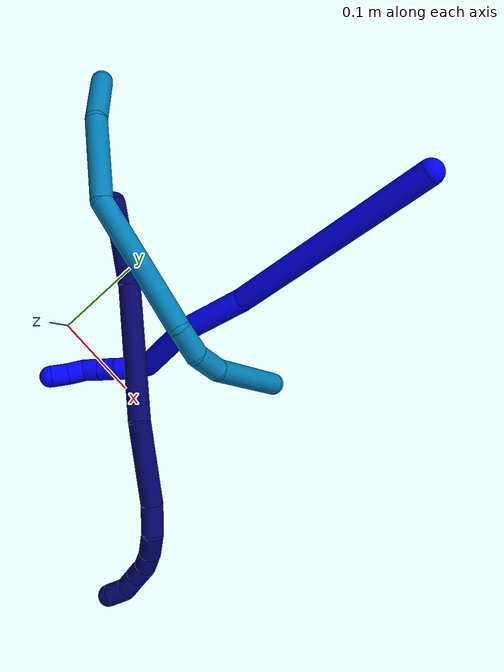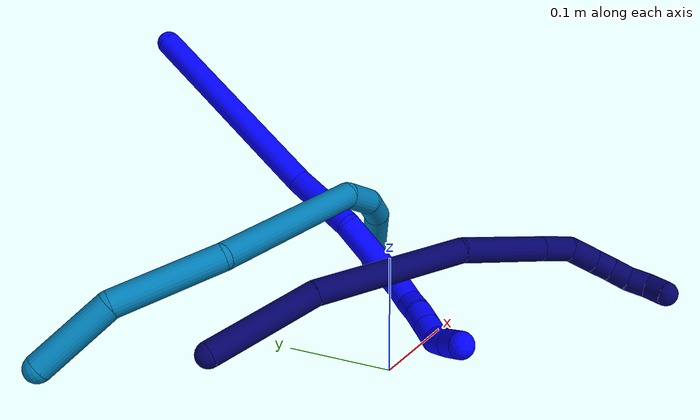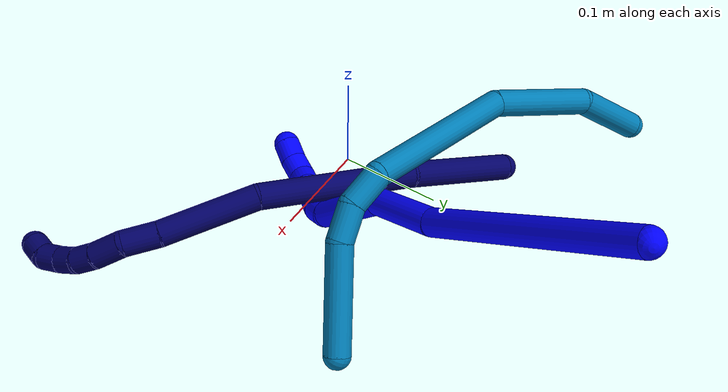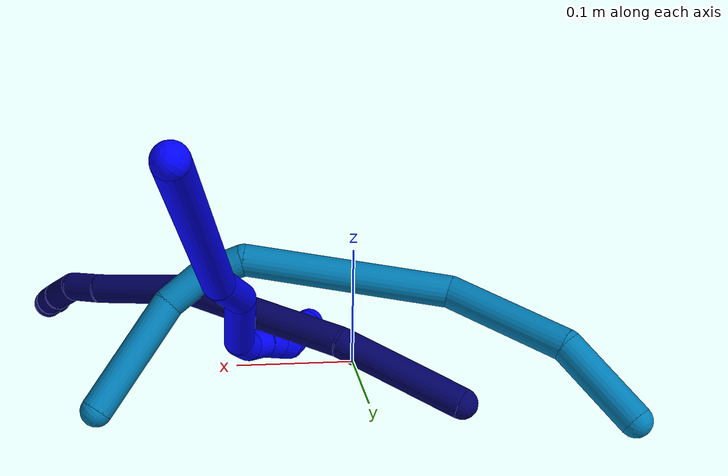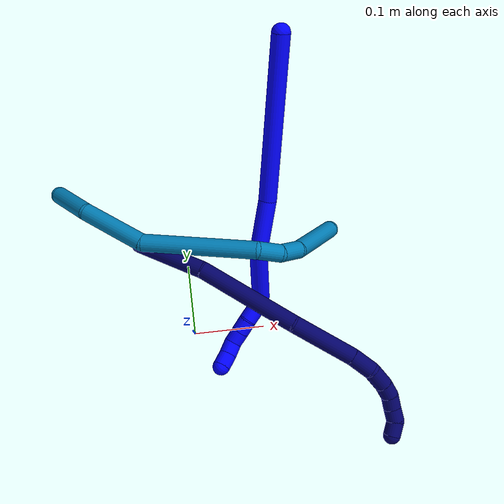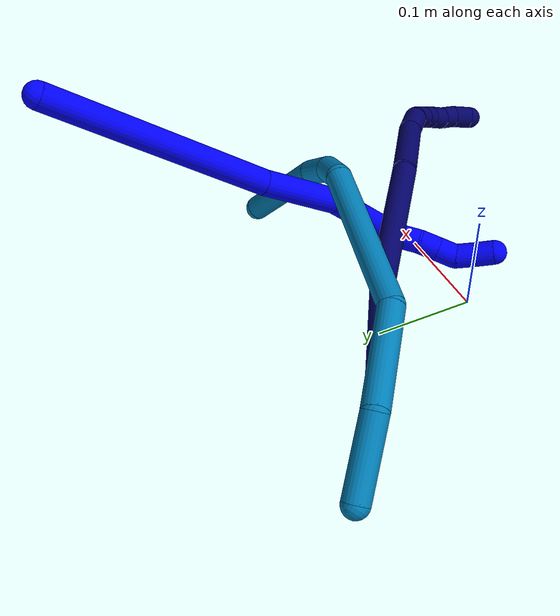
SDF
<sdf version="1.7">
 <world name="default">
  <model name="1">
   <static>0</static>
   <link name="1">
    <collision name="collision-cylinder-e_1_1_4">
     <pose>-0.001799 -0.067383 -0.090909 2.50374 -0.015895 -0.048129</pose>
     <geometry><cylinder><radius>0.0125</radius><length>0.226345</length></cylinder></geometry>
     <surface>
      <friction><ode><mu>1.16</mu><mu2>1.16</mu2><slip1>0</slip1><slip2>0</slip2></ode></friction>
      <contact><ode><kp>1e+06</kp><kd>1</kd><max_vel>0</max_vel><min_depth>0.001</min_depth></ode></contact>
     </surface>
    </collision>
    <visual name="visual-cylinder-e_1_1_4">
     <pose>-0.001799 -0.067383 -0.090909 2.50374 -0.015895 -0.048129</pose>
     <geometry><cylinder><radius>0.0125</radius><length>0.226345</length></cylinder></geometry>
     <material><ambient>0 0 1 1</ambient></material>
    </visual>
    <collision name="collision-cylinder-e_2_4_5">
     <pose>-0.010561 -0.153899 -0.213085 2.59247 -0.187722 -0.645073</pose>
     <geometry><cylinder><radius>0.0125</radius><length>0.074626</length></cylinder></geometry>
     <surface>
      <friction><ode><mu>1.16</mu><mu2>1.16</mu2><slip1>0</slip1><slip2>0</slip2></ode></friction>
      <contact><ode><kp>1e+06</kp><kd>1</kd><max_vel>0</max_vel><min_depth>0.001</min_depth></ode></contact>
     </surface>
    </collision>
    <visual name="visual-cylinder-e_2_4_5">
     <pose>-0.010561 -0.153899 -0.213085 2.59247 -0.187722 -0.645073</pose>
     <geometry><cylinder><radius>0.0125</radius><length>0.074626</length></cylinder></geometry>
     <material><ambient>0 0 1 1</ambient></material>
    </visual>
    <collision name="collision-cylinder-e_3_5_6">
     <pose>-0.011324 -0.199096 -0.273027 2.40383 0.158678 0.405674</pose>
     <geometry><cylinder><radius>0.0125</radius><length>0.078484</length></cylinder></geometry>
     <surface>
      <friction><ode><mu>1.16</mu><mu2>1.16</mu2><slip1>0</slip1><slip2>0</slip2></ode></friction>
      <contact><ode><kp>1e+06</kp><kd>1</kd><max_vel>0</max_vel><min_depth>0.001</min_depth></ode></contact>
     </surface>
    </collision>
    <visual name="visual-cylinder-e_3_5_6">
     <pose>-0.011324 -0.199096 -0.273027 2.40383 0.158678 0.405674</pose>
     <geometry><cylinder><radius>0.0125</radius><length>0.078484</length></cylinder></geometry>
     <material><ambient>0 0 1 1</ambient></material>
    </visual>
    <collision name="collision-cylinder-e_4_6_7">
     <pose>-0.006063 -0.228559 -0.311192 2.7977 -0.092996 -0.523595</pose>
     <geometry><cylinder><radius>0.0125</radius><length>0.020253</length></cylinder></geometry>
     <surface>
      <friction><ode><mu>1.16</mu><mu2>1.16</mu2><slip1>0</slip1><slip2>0</slip2></ode></friction>
      <contact><ode><kp>1e+06</kp><kd>1</kd><max_vel>0</max_vel><min_depth>0.001</min_depth></ode></contact>
     </surface>
    </collision>
    <visual name="visual-cylinder-e_4_6_7">
     <pose>-0.006063 -0.228559 -0.311192 2.7977 -0.092996 -0.523595</pose>
     <geometry><cylinder><radius>0.0125</radius><length>0.020253</length></cylinder></geometry>
     <material><ambient>0 0 1 1</ambient></material>
    </visual>
    <collision name="collision-cylinder-e_5_7_8">
     <pose>-0.01125 -0.23255 -0.329769 3.0766 -0.436398 -2.85044</pose>
     <geometry><cylinder><radius>0.0125</radius><length>0.020091</length></cylinder></geometry>
     <surface>
      <friction><ode><mu>1.16</mu><mu2>1.16</mu2><slip1>0</slip1><slip2>0</slip2></ode></friction>
      <contact><ode><kp>1e+06</kp><kd>1</kd><max_vel>0</max_vel><min_depth>0.001</min_depth></ode></contact>
     </surface>
    </collision>
    <visual name="visual-cylinder-e_5_7_8">
     <pose>-0.01125 -0.23255 -0.329769 3.0766 -0.436398 -2.85044</pose>
     <geometry><cylinder><radius>0.0125</radius><length>0.020091</length></cylinder></geometry>
     <material><ambient>0 0 1 1</ambient></material>
    </visual>
    <collision name="collision-cylinder-e_6_8_9">
     <pose>-0.018055 -0.234586 -0.348425 2.99176 -0.258481 -2.09412</pose>
     <geometry><cylinder><radius>0.0125</radius><length>0.020024</length></cylinder></geometry>
     <surface>
      <friction><ode><mu>1.16</mu><mu2>1.16</mu2><slip1>0</slip1><slip2>0</slip2></ode></friction>
      <contact><ode><kp>1e+06</kp><kd>1</kd><max_vel>0</max_vel><min_depth>0.001</min_depth></ode></contact>
     </surface>
    </collision>
    <visual name="visual-cylinder-e_6_8_9">
     <pose>-0.018055 -0.234586 -0.348425 2.99176 -0.258481 -2.09412</pose>
     <geometry><cylinder><radius>0.0125</radius><length>0.020024</length></cylinder></geometry>
     <material><ambient>0 0 1 1</ambient></material>
    </visual>
    <collision name="collision-cylinder-e_7_9_10">
     <pose>-0.023195 -0.237292 -0.367659 3.01177 -0.258878 -2.21531</pose>
     <geometry><cylinder><radius>0.0125</radius><length>0.020161</length></cylinder></geometry>
     <surface>
      <friction><ode><mu>1.16</mu><mu2>1.16</mu2><slip1>0</slip1><slip2>0</slip2></ode></friction>
      <contact><ode><kp>1e+06</kp><kd>1</kd><max_vel>0</max_vel><min_depth>0.001</min_depth></ode></contact>
     </surface>
    </collision>
    <visual name="visual-cylinder-e_7_9_10">
     <pose>-0.023195 -0.237292 -0.367659 3.01177 -0.258878 -2.21531</pose>
     <geometry><cylinder><radius>0.0125</radius><length>0.020161</length></cylinder></geometry>
     <material><ambient>0 0 1 1</ambient></material>
    </visual>
    <collision name="collision-cylinder-e_8_10_11">
     <pose>-0.032705 -0.240187 -0.384351 2.91322 -0.765172 -2.58632</pose>
     <geometry><cylinder><radius>0.0125</radius><length>0.020009</length></cylinder></geometry>
     <surface>
      <friction><ode><mu>1.16</mu><mu2>1.16</mu2><slip1>0</slip1><slip2>0</slip2></ode></friction>
      <contact><ode><kp>1e+06</kp><kd>1</kd><max_vel>0</max_vel><min_depth>0.001</min_depth></ode></contact>
     </surface>
    </collision>
    <visual name="visual-cylinder-e_8_10_11">
     <pose>-0.032705 -0.240187 -0.384351 2.91322 -0.765172 -2.58632</pose>
     <geometry><cylinder><radius>0.0125</radius><length>0.020009</length></cylinder></geometry>
     <material><ambient>0 0 1 1</ambient></material>
    </visual>
    <collision name="collision-cylinder-e_9_11_2">
     <pose>-0.047157 -0.242345 -0.397952 3.06202 -0.851044 -2.96637</pose>
     <geometry><cylinder><radius>0.0125</radius><length>0.020006</length></cylinder></geometry>
     <surface>
      <friction><ode><mu>1.16</mu><mu2>1.16</mu2><slip1>0</slip1><slip2>0</slip2></ode></friction>
      <contact><ode><kp>1e+06</kp><kd>1</kd><max_vel>0</max_vel><min_depth>0.001</min_depth></ode></contact>
     </surface>
    </collision>
    <visual name="visual-cylinder-e_9_11_2">
     <pose>-0.047157 -0.242345 -0.397952 3.06202 -0.851044 -2.96637</pose>
     <geometry><cylinder><radius>0.0125</radius><length>0.020006</length></cylinder></geometry>
     <material><ambient>0 0 1 1</ambient></material>
    </visual>
    <collision name="collision-sphere-2">
     <pose>-0.054679 -0.242869 -0.404525 0 -0 0</pose>
     <geometry><sphere><radius>0.0125</radius></sphere></geometry>
     <surface>
      <friction><ode><mu>1.16</mu><mu2>1.16</mu2><slip1>0</slip1><slip2>0</slip2></ode></friction>
      <contact><ode><kp>1e+06</kp><kd>1</kd><max_vel>0</max_vel><min_depth>0.001</min_depth></ode></contact>
     </surface>
    </collision>
    <visual name="visual-sphere-2">
     <pose>-0.054679 -0.242869 -0.404525 0 -0 0</pose>
     <geometry><sphere><radius>0.0125</radius></sphere></geometry>
     <material><ambient>0 0 1 1</ambient></material>
    </visual>
    <collision name="collision-sphere-11">
     <pose>-0.039635 -0.241821 -0.391379 0 -0 0</pose>
     <geometry><sphere><radius>0.0125</radius></sphere></geometry>
     <surface>
      <friction><ode><mu>1.16</mu><mu2>1.16</mu2><slip1>0</slip1><slip2>0</slip2></ode></friction>
      <contact><ode><kp>1e+06</kp><kd>1</kd><max_vel>0</max_vel><min_depth>0.001</min_depth></ode></contact>
     </surface>
    </collision>
    <visual name="visual-sphere-11">
     <pose>-0.039635 -0.241821 -0.391379 0 -0 0</pose>
     <geometry><sphere><radius>0.0125</radius></sphere></geometry>
     <material><ambient>0 0 1 1</ambient></material>
    </visual>
    <collision name="collision-sphere-10">
     <pose>-0.025775 -0.238554 -0.377322 0 -0 0</pose>
     <geometry><sphere><radius>0.0125</radius></sphere></geometry>
     <surface>
      <friction><ode><mu>1.16</mu><mu2>1.16</mu2><slip1>0</slip1><slip2>0</slip2></ode></friction>
      <contact><ode><kp>1e+06</kp><kd>1</kd><max_vel>0</max_vel><min_depth>0.001</min_depth></ode></contact>
     </surface>
    </collision>
    <visual name="visual-sphere-10">
     <pose>-0.025775 -0.238554 -0.377322 0 -0 0</pose>
     <geometry><sphere><radius>0.0125</radius></sphere></geometry>
     <material><ambient>0 0 1 1</ambient></material>
    </visual>
    <collision name="collision-sphere-9">
     <pose>-0.020614 -0.236031 -0.357996 0 -0 0</pose>
     <geometry><sphere><radius>0.0125</radius></sphere></geometry>
     <surface>
      <friction><ode><mu>1.16</mu><mu2>1.16</mu2><slip1>0</slip1><slip2>0</slip2></ode></friction>
      <contact><ode><kp>1e+06</kp><kd>1</kd><max_vel>0</max_vel><min_depth>0.001</min_depth></ode></contact>
     </surface>
    </collision>
    <visual name="visual-sphere-9">
     <pose>-0.020614 -0.236031 -0.357996 0 -0 0</pose>
     <geometry><sphere><radius>0.0125</radius></sphere></geometry>
     <material><ambient>0 0 1 1</ambient></material>
    </visual>
    <collision name="collision-sphere-4">
     <pose>-0.003598 -0.134766 -0.181817 0 -0 0</pose>
     <geometry><sphere><radius>0.0125</radius></sphere></geometry>
     <surface>
      <friction><ode><mu>1.16</mu><mu2>1.16</mu2><slip1>0</slip1><slip2>0</slip2></ode></friction>
      <contact><ode><kp>1e+06</kp><kd>1</kd><max_vel>0</max_vel><min_depth>0.001</min_depth></ode></contact>
     </surface>
    </collision>
    <visual name="visual-sphere-4">
     <pose>-0.003598 -0.134766 -0.181817 0 -0 0</pose>
     <geometry><sphere><radius>0.0125</radius></sphere></geometry>
     <material><ambient>0 0 1 1</ambient></material>
    </visual>
    <collision name="collision-sphere-1">
     <geometry><sphere><radius>0.0125</radius></sphere></geometry>
     <surface>
      <friction><ode><mu>1.16</mu><mu2>1.16</mu2><slip1>0</slip1><slip2>0</slip2></ode></friction>
      <contact><ode><kp>1e+06</kp><kd>1</kd><max_vel>0</max_vel><min_depth>0.001</min_depth></ode></contact>
     </surface>
    </collision>
    <visual name="visual-sphere-1">
     <geometry><sphere><radius>0.0125</radius></sphere></geometry>
     <material><ambient>0 0 1 1</ambient></material>
    </visual>
    <collision name="collision-sphere-8">
     <pose>-0.015496 -0.233141 -0.338854 0 -0 0</pose>
     <geometry><sphere><radius>0.0125</radius></sphere></geometry>
     <surface>
      <friction><ode><mu>1.16</mu><mu2>1.16</mu2><slip1>0</slip1><slip2>0</slip2></ode></friction>
      <contact><ode><kp>1e+06</kp><kd>1</kd><max_vel>0</max_vel><min_depth>0.001</min_depth></ode></contact>
     </surface>
    </collision>
    <visual name="visual-sphere-8">
     <pose>-0.015496 -0.233141 -0.338854 0 -0 0</pose>
     <geometry><sphere><radius>0.0125</radius></sphere></geometry>
     <material><ambient>0 0 1 1</ambient></material>
    </visual>
    <collision name="collision-sphere-5">
     <pose>-0.017524 -0.173032 -0.244354 0 -0 0</pose>
     <geometry><sphere><radius>0.0125</radius></sphere></geometry>
     <surface>
      <friction><ode><mu>1.16</mu><mu2>1.16</mu2><slip1>0</slip1><slip2>0</slip2></ode></friction>
      <contact><ode><kp>1e+06</kp><kd>1</kd><max_vel>0</max_vel><min_depth>0.001</min_depth></ode></contact>
     </surface>
    </collision>
    <visual name="visual-sphere-5">
     <pose>-0.017524 -0.173032 -0.244354 0 -0 0</pose>
     <geometry><sphere><radius>0.0125</radius></sphere></geometry>
     <material><ambient>0 0 1 1</ambient></material>
    </visual>
    <collision name="collision-sphere-6">
     <pose>-0.005123 -0.225159 -0.3017 0 -0 0</pose>
     <geometry><sphere><radius>0.0125</radius></sphere></geometry>
     <surface>
      <friction><ode><mu>1.16</mu><mu2>1.16</mu2><slip1>0</slip1><slip2>0</slip2></ode></friction>
      <contact><ode><kp>1e+06</kp><kd>1</kd><max_vel>0</max_vel><min_depth>0.001</min_depth></ode></contact>
     </surface>
    </collision>
    <visual name="visual-sphere-6">
     <pose>-0.005123 -0.225159 -0.3017 0 -0 0</pose>
     <geometry><sphere><radius>0.0125</radius></sphere></geometry>
     <material><ambient>0 0 1 1</ambient></material>
    </visual>
    <collision name="collision-sphere-7">
     <pose>-0.007004 -0.231958 -0.320685 0 -0 0</pose>
     <geometry><sphere><radius>0.0125</radius></sphere></geometry>
     <surface>
      <friction><ode><mu>1.16</mu><mu2>1.16</mu2><slip1>0</slip1><slip2>0</slip2></ode></friction>
      <contact><ode><kp>1e+06</kp><kd>1</kd><max_vel>0</max_vel><min_depth>0.001</min_depth></ode></contact>
     </surface>
    </collision>
    <visual name="visual-sphere-7">
     <pose>-0.007004 -0.231958 -0.320685 0 -0 0</pose>
     <geometry><sphere><radius>0.0125</radius></sphere></geometry>
     <material><ambient>0 0 1 1</ambient></material>
    </visual>
    <inertial>
     <pose>-0.00972 -0.141599 -0.201752 0 -0 0</pose>
     <mass>0.5</mass>
     <inertia>
      <ixx>0.000979</ixx>
      <ixy>0</ixy>
      <ixz>0</ixz>
      <iyy>-0.000904</iyy>
      <iyz>0</iyz>
      <izz>0.000618</izz>
     </inertia>
    </inertial>
   </link>
   <pose>0.153022 0.348188 0.246939 0.542533 0.958439 1.28035</pose>
  </model>
  <model name="7">
   <static>0</static>
   <link name="7">
    <collision name="collision-cylinder-e_1_1_4">
     <pose>0.009491 0.007447 0.053062 -0.139435 0.175307 -0.012273</pose>
     <geometry><cylinder><radius>0.0125</radius><length>0.108832</length></cylinder></geometry>
     <surface>
      <friction><ode><mu>1.16</mu><mu2>1.16</mu2><slip1>0</slip1><slip2>0</slip2></ode></friction>
      <contact><ode><kp>1e+06</kp><kd>1</kd><max_vel>0</max_vel><min_depth>0.001</min_depth></ode></contact>
     </surface>
    </collision>
    <visual name="visual-cylinder-e_1_1_4">
     <pose>0.009491 0.007447 0.053062 -0.139435 0.175307 -0.012273</pose>
     <geometry><cylinder><radius>0.0125</radius><length>0.108832</length></cylinder></geometry>
     <material><ambient>0.003922 0 0.403922 1</ambient></material>
    </visual>
    <collision name="collision-cylinder-e_2_4_5">
     <pose>0.024692 0.009657 0.181486 0.069379 0.075446 0.002619</pose>
     <geometry><cylinder><radius>0.0125</radius><length>0.151519</length></cylinder></geometry>
     <surface>
      <friction><ode><mu>1.16</mu><mu2>1.16</mu2><slip1>0</slip1><slip2>0</slip2></ode></friction>
      <contact><ode><kp>1e+06</kp><kd>1</kd><max_vel>0</max_vel><min_depth>0.001</min_depth></ode></contact>
     </surface>
    </collision>
    <visual name="visual-cylinder-e_2_4_5">
     <pose>0.024692 0.009657 0.181486 0.069379 0.075446 0.002619</pose>
     <geometry><cylinder><radius>0.0125</radius><length>0.151519</length></cylinder></geometry>
     <material><ambient>0.003922 0 0.403922 1</ambient></material>
    </visual>
    <collision name="collision-cylinder-e_3_5_6">
     <pose>0.036931 -0.010806 0.300864 0.333038 0.139269 0.023445</pose>
     <geometry><cylinder><radius>0.0125</radius><length>0.094061</length></cylinder></geometry>
     <surface>
      <friction><ode><mu>1.16</mu><mu2>1.16</mu2><slip1>0</slip1><slip2>0</slip2></ode></friction>
      <contact><ode><kp>1e+06</kp><kd>1</kd><max_vel>0</max_vel><min_depth>0.001</min_depth></ode></contact>
     </surface>
    </collision>
    <visual name="visual-cylinder-e_3_5_6">
     <pose>0.036931 -0.010806 0.300864 0.333038 0.139269 0.023445</pose>
     <geometry><cylinder><radius>0.0125</radius><length>0.094061</length></cylinder></geometry>
     <material><ambient>0.003922 0 0.403922 1</ambient></material>
    </visual>
    <collision name="collision-cylinder-e_4_6_7">
     <pose>0.043734 -0.031296 0.36083 0.318792 0.016342 0.002627</pose>
     <geometry><cylinder><radius>0.0125</radius><length>0.033596</length></cylinder></geometry>
     <surface>
      <friction><ode><mu>1.16</mu><mu2>1.16</mu2><slip1>0</slip1><slip2>0</slip2></ode></friction>
      <contact><ode><kp>1e+06</kp><kd>1</kd><max_vel>0</max_vel><min_depth>0.001</min_depth></ode></contact>
     </surface>
    </collision>
    <visual name="visual-cylinder-e_4_6_7">
     <pose>0.043734 -0.031296 0.36083 0.318792 0.016342 0.002627</pose>
     <geometry><cylinder><radius>0.0125</radius><length>0.033596</length></cylinder></geometry>
     <material><ambient>0.003922 0 0.403922 1</ambient></material>
    </visual>
    <collision name="collision-cylinder-e_5_7_8">
     <pose>0.042228 -0.046395 0.387938 0.722395 -0.119126 -0.045048</pose>
     <geometry><cylinder><radius>0.0125</radius><length>0.029962</length></cylinder></geometry>
     <surface>
      <friction><ode><mu>1.16</mu><mu2>1.16</mu2><slip1>0</slip1><slip2>0</slip2></ode></friction>
      <contact><ode><kp>1e+06</kp><kd>1</kd><max_vel>0</max_vel><min_depth>0.001</min_depth></ode></contact>
     </surface>
    </collision>
    <visual name="visual-cylinder-e_5_7_8">
     <pose>0.042228 -0.046395 0.387938 0.722395 -0.119126 -0.045048</pose>
     <geometry><cylinder><radius>0.0125</radius><length>0.029962</length></cylinder></geometry>
     <material><ambient>0.003922 0 0.403922 1</ambient></material>
    </visual>
    <collision name="collision-cylinder-e_6_8_9">
     <pose>0.03754 -0.062762 0.406513 0.722097 -0.286206 -0.108708</pose>
     <geometry><cylinder><radius>0.0125</radius><length>0.020602</length></cylinder></geometry>
     <surface>
      <friction><ode><mu>1.16</mu><mu2>1.16</mu2><slip1>0</slip1><slip2>0</slip2></ode></friction>
      <contact><ode><kp>1e+06</kp><kd>1</kd><max_vel>0</max_vel><min_depth>0.001</min_depth></ode></contact>
     </surface>
    </collision>
    <visual name="visual-cylinder-e_6_8_9">
     <pose>0.03754 -0.062762 0.406513 0.722097 -0.286206 -0.108708</pose>
     <geometry><cylinder><radius>0.0125</radius><length>0.020602</length></cylinder></geometry>
     <material><ambient>0.003922 0 0.403922 1</ambient></material>
    </visual>
    <collision name="collision-cylinder-e_7_9_10">
     <pose>0.029157 -0.07507 0.420006 0.760096 -0.578461 -0.236633</pose>
     <geometry><cylinder><radius>0.0125</radius><length>0.020029</length></cylinder></geometry>
     <surface>
      <friction><ode><mu>1.16</mu><mu2>1.16</mu2><slip1>0</slip1><slip2>0</slip2></ode></friction>
      <contact><ode><kp>1e+06</kp><kd>1</kd><max_vel>0</max_vel><min_depth>0.001</min_depth></ode></contact>
     </surface>
    </collision>
    <visual name="visual-cylinder-e_7_9_10">
     <pose>0.029157 -0.07507 0.420006 0.760096 -0.578461 -0.236633</pose>
     <geometry><cylinder><radius>0.0125</radius><length>0.020029</length></cylinder></geometry>
     <material><ambient>0.003922 0 0.403922 1</ambient></material>
    </visual>
    <collision name="collision-cylinder-e_8_10_11">
     <pose>0.017718 -0.085239 0.432967 0.567824 -0.630827 -0.189857</pose>
     <geometry><cylinder><radius>0.0125</radius><length>0.020222</length></cylinder></geometry>
     <surface>
      <friction><ode><mu>1.16</mu><mu2>1.16</mu2><slip1>0</slip1><slip2>0</slip2></ode></friction>
      <contact><ode><kp>1e+06</kp><kd>1</kd><max_vel>0</max_vel><min_depth>0.001</min_depth></ode></contact>
     </surface>
    </collision>
    <visual name="visual-cylinder-e_8_10_11">
     <pose>0.017718 -0.085239 0.432967 0.567824 -0.630827 -0.189857</pose>
     <geometry><cylinder><radius>0.0125</radius><length>0.020222</length></cylinder></geometry>
     <material><ambient>0.003922 0 0.403922 1</ambient></material>
    </visual>
    <collision name="collision-cylinder-e_9_11_2">
     <pose>0.002102 -0.092314 0.44328 0.664114 -1.14687 -0.438243</pose>
     <geometry><cylinder><radius>0.0125</radius><length>0.021179</length></cylinder></geometry>
     <surface>
      <friction><ode><mu>1.16</mu><mu2>1.16</mu2><slip1>0</slip1><slip2>0</slip2></ode></friction>
      <contact><ode><kp>1e+06</kp><kd>1</kd><max_vel>0</max_vel><min_depth>0.001</min_depth></ode></contact>
     </surface>
    </collision>
    <visual name="visual-cylinder-e_9_11_2">
     <pose>0.002102 -0.092314 0.44328 0.664114 -1.14687 -0.438243</pose>
     <geometry><cylinder><radius>0.0125</radius><length>0.021179</length></cylinder></geometry>
     <material><ambient>0.003922 0 0.403922 1</ambient></material>
    </visual>
    <collision name="collision-sphere-2">
     <pose>-0.00755 -0.094999 0.44671 0 -0 0</pose>
     <geometry><sphere><radius>0.0125</radius></sphere></geometry>
     <surface>
      <friction><ode><mu>1.16</mu><mu2>1.16</mu2><slip1>0</slip1><slip2>0</slip2></ode></friction>
      <contact><ode><kp>1e+06</kp><kd>1</kd><max_vel>0</max_vel><min_depth>0.001</min_depth></ode></contact>
     </surface>
    </collision>
    <visual name="visual-sphere-2">
     <pose>-0.00755 -0.094999 0.44671 0 -0 0</pose>
     <geometry><sphere><radius>0.0125</radius></sphere></geometry>
     <material><ambient>0.003922 0 0.403922 1</ambient></material>
    </visual>
    <collision name="collision-sphere-11">
     <pose>0.011754 -0.08963 0.43985 0 -0 0</pose>
     <geometry><sphere><radius>0.0125</radius></sphere></geometry>
     <surface>
      <friction><ode><mu>1.16</mu><mu2>1.16</mu2><slip1>0</slip1><slip2>0</slip2></ode></friction>
      <contact><ode><kp>1e+06</kp><kd>1</kd><max_vel>0</max_vel><min_depth>0.001</min_depth></ode></contact>
     </surface>
    </collision>
    <visual name="visual-sphere-11">
     <pose>0.011754 -0.08963 0.43985 0 -0 0</pose>
     <geometry><sphere><radius>0.0125</radius></sphere></geometry>
     <material><ambient>0.003922 0 0.403922 1</ambient></material>
    </visual>
    <collision name="collision-sphere-10">
     <pose>0.023681 -0.080848 0.426083 0 -0 0</pose>
     <geometry><sphere><radius>0.0125</radius></sphere></geometry>
     <surface>
      <friction><ode><mu>1.16</mu><mu2>1.16</mu2><slip1>0</slip1><slip2>0</slip2></ode></friction>
      <contact><ode><kp>1e+06</kp><kd>1</kd><max_vel>0</max_vel><min_depth>0.001</min_depth></ode></contact>
     </surface>
    </collision>
    <visual name="visual-sphere-10">
     <pose>0.023681 -0.080848 0.426083 0 -0 0</pose>
     <geometry><sphere><radius>0.0125</radius></sphere></geometry>
     <material><ambient>0.003922 0 0.403922 1</ambient></material>
    </visual>
    <collision name="collision-sphere-9">
     <pose>0.034632 -0.069293 0.413928 0 -0 0</pose>
     <geometry><sphere><radius>0.0125</radius></sphere></geometry>
     <surface>
      <friction><ode><mu>1.16</mu><mu2>1.16</mu2><slip1>0</slip1><slip2>0</slip2></ode></friction>
      <contact><ode><kp>1e+06</kp><kd>1</kd><max_vel>0</max_vel><min_depth>0.001</min_depth></ode></contact>
     </surface>
    </collision>
    <visual name="visual-sphere-9">
     <pose>0.034632 -0.069293 0.413928 0 -0 0</pose>
     <geometry><sphere><radius>0.0125</radius></sphere></geometry>
     <material><ambient>0.003922 0 0.403922 1</ambient></material>
    </visual>
    <collision name="collision-sphere-4">
     <pose>0.018981 0.014894 0.106124 0 -0 0</pose>
     <geometry><sphere><radius>0.0125</radius></sphere></geometry>
     <surface>
      <friction><ode><mu>1.16</mu><mu2>1.16</mu2><slip1>0</slip1><slip2>0</slip2></ode></friction>
      <contact><ode><kp>1e+06</kp><kd>1</kd><max_vel>0</max_vel><min_depth>0.001</min_depth></ode></contact>
     </surface>
    </collision>
    <visual name="visual-sphere-4">
     <pose>0.018981 0.014894 0.106124 0 -0 0</pose>
     <geometry><sphere><radius>0.0125</radius></sphere></geometry>
     <material><ambient>0.003922 0 0.403922 1</ambient></material>
    </visual>
    <collision name="collision-sphere-1">
     <geometry><sphere><radius>0.0125</radius></sphere></geometry>
     <surface>
      <friction><ode><mu>1.16</mu><mu2>1.16</mu2><slip1>0</slip1><slip2>0</slip2></ode></friction>
      <contact><ode><kp>1e+06</kp><kd>1</kd><max_vel>0</max_vel><min_depth>0.001</min_depth></ode></contact>
     </surface>
    </collision>
    <visual name="visual-sphere-1">
     <geometry><sphere><radius>0.0125</radius></sphere></geometry>
     <material><ambient>0.003922 0 0.403922 1</ambient></material>
    </visual>
    <collision name="collision-sphere-8">
     <pose>0.040448 -0.05623 0.399098 0 -0 0</pose>
     <geometry><sphere><radius>0.0125</radius></sphere></geometry>
     <surface>
      <friction><ode><mu>1.16</mu><mu2>1.16</mu2><slip1>0</slip1><slip2>0</slip2></ode></friction>
      <contact><ode><kp>1e+06</kp><kd>1</kd><max_vel>0</max_vel><min_depth>0.001</min_depth></ode></contact>
     </surface>
    </collision>
    <visual name="visual-sphere-8">
     <pose>0.040448 -0.05623 0.399098 0 -0 0</pose>
     <geometry><sphere><radius>0.0125</radius></sphere></geometry>
     <material><ambient>0.003922 0 0.403922 1</ambient></material>
    </visual>
    <collision name="collision-sphere-5">
     <pose>0.030402 0.00442 0.256848 0 -0 0</pose>
     <geometry><sphere><radius>0.0125</radius></sphere></geometry>
     <surface>
      <friction><ode><mu>1.16</mu><mu2>1.16</mu2><slip1>0</slip1><slip2>0</slip2></ode></friction>
      <contact><ode><kp>1e+06</kp><kd>1</kd><max_vel>0</max_vel><min_depth>0.001</min_depth></ode></contact>
     </surface>
    </collision>
    <visual name="visual-sphere-5">
     <pose>0.030402 0.00442 0.256848 0 -0 0</pose>
     <geometry><sphere><radius>0.0125</radius></sphere></geometry>
     <material><ambient>0.003922 0 0.403922 1</ambient></material>
    </visual>
    <collision name="collision-sphere-6">
     <pose>0.04346 -0.026032 0.34488 0 -0 0</pose>
     <geometry><sphere><radius>0.0125</radius></sphere></geometry>
     <surface>
      <friction><ode><mu>1.16</mu><mu2>1.16</mu2><slip1>0</slip1><slip2>0</slip2></ode></friction>
      <contact><ode><kp>1e+06</kp><kd>1</kd><max_vel>0</max_vel><min_depth>0.001</min_depth></ode></contact>
     </surface>
    </collision>
    <visual name="visual-sphere-6">
     <pose>0.04346 -0.026032 0.34488 0 -0 0</pose>
     <geometry><sphere><radius>0.0125</radius></sphere></geometry>
     <material><ambient>0.003922 0 0.403922 1</ambient></material>
    </visual>
    <collision name="collision-sphere-7">
     <pose>0.044009 -0.03656 0.376779 0 -0 0</pose>
     <geometry><sphere><radius>0.0125</radius></sphere></geometry>
     <surface>
      <friction><ode><mu>1.16</mu><mu2>1.16</mu2><slip1>0</slip1><slip2>0</slip2></ode></friction>
      <contact><ode><kp>1e+06</kp><kd>1</kd><max_vel>0</max_vel><min_depth>0.001</min_depth></ode></contact>
     </surface>
    </collision>
    <visual name="visual-sphere-7">
     <pose>0.044009 -0.03656 0.376779 0 -0 0</pose>
     <geometry><sphere><radius>0.0125</radius></sphere></geometry>
     <material><ambient>0.003922 0 0.403922 1</ambient></material>
    </visual>
    <inertial>
     <pose>0.025485 -0.015319 0.240498 0 -0 0</pose>
     <mass>0.5</mass>
     <inertia>
      <ixx>0.000489</ixx>
      <ixy>0</ixy>
      <ixz>0</ixz>
      <iyy>0.000479</iyy>
      <iyz>0</iyz>
      <izz>2.2e-05</izz>
     </inertia>
    </inertial>
   </link>
   <pose>-0.066862 0.139548 0.012245 1.36372 0.055638 0.827059</pose>
  </model>
  <model name="9">
   <static>0</static>
   <link name="9">
    <collision name="collision-cylinder-e_1_1_4">
     <pose>0.006751 0.009768 0.034837 -0.273385 0.184478 -0.025446</pose>
     <geometry><cylinder><radius>0.0125</radius><length>0.073609</length></cylinder></geometry>
     <surface>
      <friction><ode><mu>1.16</mu><mu2>1.16</mu2><slip1>0</slip1><slip2>0</slip2></ode></friction>
      <contact><ode><kp>1e+06</kp><kd>1</kd><max_vel>0</max_vel><min_depth>0.001</min_depth></ode></contact>
     </surface>
    </collision>
    <visual name="visual-cylinder-e_1_1_4">
     <pose>0.006751 0.009768 0.034837 -0.273385 0.184478 -0.025446</pose>
     <geometry><cylinder><radius>0.0125</radius><length>0.073609</length></cylinder></geometry>
     <material><ambient>0 0.490196 0.709804 1</ambient></material>
    </visual>
    <collision name="collision-cylinder-e_2_4_5">
     <pose>0.031746 0.015152 0.115254 0.095891 0.379132 0.018412</pose>
     <geometry><cylinder><radius>0.0125</radius><length>0.098584</length></cylinder></geometry>
     <surface>
      <friction><ode><mu>1.16</mu><mu2>1.16</mu2><slip1>0</slip1><slip2>0</slip2></ode></friction>
      <contact><ode><kp>1e+06</kp><kd>1</kd><max_vel>0</max_vel><min_depth>0.001</min_depth></ode></contact>
     </surface>
    </collision>
    <visual name="visual-cylinder-e_2_4_5">
     <pose>0.031746 0.015152 0.115254 0.095891 0.379132 0.018412</pose>
     <geometry><cylinder><radius>0.0125</radius><length>0.098584</length></cylinder></geometry>
     <material><ambient>0 0.490196 0.709804 1</ambient></material>
    </visual>
    <collision name="collision-cylinder-e_3_5_6">
     <pose>0.109339 0.0053 0.214017 0.102467 0.837545 0.04564</pose>
     <geometry><cylinder><radius>0.0125</radius><length>0.159755</length></cylinder></geometry>
     <surface>
      <friction><ode><mu>1.16</mu><mu2>1.16</mu2><slip1>0</slip1><slip2>0</slip2></ode></friction>
      <contact><ode><kp>1e+06</kp><kd>1</kd><max_vel>0</max_vel><min_depth>0.001</min_depth></ode></contact>
     </surface>
    </collision>
    <visual name="visual-cylinder-e_3_5_6">
     <pose>0.109339 0.0053 0.214017 0.102467 0.837545 0.04564</pose>
     <geometry><cylinder><radius>0.0125</radius><length>0.159755</length></cylinder></geometry>
     <material><ambient>0 0.490196 0.709804 1</ambient></material>
    </visual>
    <collision name="collision-cylinder-e_4_6_7">
     <pose>0.182288 -0.009076 0.274185 0.905576 0.876548 0.448353</pose>
     <geometry><cylinder><radius>0.0125</radius><length>0.03539</length></cylinder></geometry>
     <surface>
      <friction><ode><mu>1.16</mu><mu2>1.16</mu2><slip1>0</slip1><slip2>0</slip2></ode></friction>
      <contact><ode><kp>1e+06</kp><kd>1</kd><max_vel>0</max_vel><min_depth>0.001</min_depth></ode></contact>
     </surface>
    </collision>
    <visual name="visual-cylinder-e_4_6_7">
     <pose>0.182288 -0.009076 0.274185 0.905576 0.876548 0.448353</pose>
     <geometry><cylinder><radius>0.0125</radius><length>0.03539</length></cylinder></geometry>
     <material><ambient>0 0.490196 0.709804 1</ambient></material>
    </visual>
    <collision name="collision-cylinder-e_5_7_8">
     <pose>0.210015 -0.027252 0.281126 1.57593 0.990176 0.994472</pose>
     <geometry><cylinder><radius>0.0125</radius><length>0.033794</length></cylinder></geometry>
     <surface>
      <friction><ode><mu>1.16</mu><mu2>1.16</mu2><slip1>0</slip1><slip2>0</slip2></ode></friction>
      <contact><ode><kp>1e+06</kp><kd>1</kd><max_vel>0</max_vel><min_depth>0.001</min_depth></ode></contact>
     </surface>
    </collision>
    <visual name="visual-cylinder-e_5_7_8">
     <pose>0.210015 -0.027252 0.281126 1.57593 0.990176 0.994472</pose>
     <geometry><cylinder><radius>0.0125</radius><length>0.033794</length></cylinder></geometry>
     <material><ambient>0 0.490196 0.709804 1</ambient></material>
    </visual>
    <collision name="collision-cylinder-e_6_8_2">
     <pose>0.261715 -0.064503 0.265299 2.08425 0.863399 1.33557</pose>
     <geometry><cylinder><radius>0.0125</radius><length>0.098867</length></cylinder></geometry>
     <surface>
      <friction><ode><mu>1.16</mu><mu2>1.16</mu2><slip1>0</slip1><slip2>0</slip2></ode></friction>
      <contact><ode><kp>1e+06</kp><kd>1</kd><max_vel>0</max_vel><min_depth>0.001</min_depth></ode></contact>
     </surface>
    </collision>
    <visual name="visual-cylinder-e_6_8_2">
     <pose>0.261715 -0.064503 0.265299 2.08425 0.863399 1.33557</pose>
     <geometry><cylinder><radius>0.0125</radius><length>0.098867</length></cylinder></geometry>
     <material><ambient>0 0.490196 0.709804 1</ambient></material>
    </visual>
    <collision name="collision-sphere-2">
     <pose>0.299287 -0.092486 0.249519 0 -0 0</pose>
     <geometry><sphere><radius>0.0125</radius></sphere></geometry>
     <surface>
      <friction><ode><mu>1.16</mu><mu2>1.16</mu2><slip1>0</slip1><slip2>0</slip2></ode></friction>
      <contact><ode><kp>1e+06</kp><kd>1</kd><max_vel>0</max_vel><min_depth>0.001</min_depth></ode></contact>
     </surface>
    </collision>
    <visual name="visual-sphere-2">
     <pose>0.299287 -0.092486 0.249519 0 -0 0</pose>
     <geometry><sphere><radius>0.0125</radius></sphere></geometry>
     <material><ambient>0 0.490196 0.709804 1</ambient></material>
    </visual>
    <collision name="collision-sphere-4">
     <pose>0.013502 0.019537 0.069673 0 -0 0</pose>
     <geometry><sphere><radius>0.0125</radius></sphere></geometry>
     <surface>
      <friction><ode><mu>1.16</mu><mu2>1.16</mu2><slip1>0</slip1><slip2>0</slip2></ode></friction>
      <contact><ode><kp>1e+06</kp><kd>1</kd><max_vel>0</max_vel><min_depth>0.001</min_depth></ode></contact>
     </surface>
    </collision>
    <visual name="visual-sphere-4">
     <pose>0.013502 0.019537 0.069673 0 -0 0</pose>
     <geometry><sphere><radius>0.0125</radius></sphere></geometry>
     <material><ambient>0 0.490196 0.709804 1</ambient></material>
    </visual>
    <collision name="collision-sphere-1">
     <geometry><sphere><radius>0.0125</radius></sphere></geometry>
     <surface>
      <friction><ode><mu>1.16</mu><mu2>1.16</mu2><slip1>0</slip1><slip2>0</slip2></ode></friction>
      <contact><ode><kp>1e+06</kp><kd>1</kd><max_vel>0</max_vel><min_depth>0.001</min_depth></ode></contact>
     </surface>
    </collision>
    <visual name="visual-sphere-1">
     <geometry><sphere><radius>0.0125</radius></sphere></geometry>
     <material><ambient>0 0.490196 0.709804 1</ambient></material>
    </visual>
    <collision name="collision-sphere-8">
     <pose>0.224143 -0.036521 0.281078 0 -0 0</pose>
     <geometry><sphere><radius>0.0125</radius></sphere></geometry>
     <surface>
      <friction><ode><mu>1.16</mu><mu2>1.16</mu2><slip1>0</slip1><slip2>0</slip2></ode></friction>
      <contact><ode><kp>1e+06</kp><kd>1</kd><max_vel>0</max_vel><min_depth>0.001</min_depth></ode></contact>
     </surface>
    </collision>
    <visual name="visual-sphere-8">
     <pose>0.224143 -0.036521 0.281078 0 -0 0</pose>
     <geometry><sphere><radius>0.0125</radius></sphere></geometry>
     <material><ambient>0 0.490196 0.709804 1</ambient></material>
    </visual>
    <collision name="collision-sphere-5">
     <pose>0.04999 0.010768 0.160836 0 -0 0</pose>
     <geometry><sphere><radius>0.0125</radius></sphere></geometry>
     <surface>
      <friction><ode><mu>1.16</mu><mu2>1.16</mu2><slip1>0</slip1><slip2>0</slip2></ode></friction>
      <contact><ode><kp>1e+06</kp><kd>1</kd><max_vel>0</max_vel><min_depth>0.001</min_depth></ode></contact>
     </surface>
    </collision>
    <visual name="visual-sphere-5">
     <pose>0.04999 0.010768 0.160836 0 -0 0</pose>
     <geometry><sphere><radius>0.0125</radius></sphere></geometry>
     <material><ambient>0 0.490196 0.709804 1</ambient></material>
    </visual>
    <collision name="collision-sphere-6">
     <pose>0.168689 -0.000169 0.267197 0 -0 0</pose>
     <geometry><sphere><radius>0.0125</radius></sphere></geometry>
     <surface>
      <friction><ode><mu>1.16</mu><mu2>1.16</mu2><slip1>0</slip1><slip2>0</slip2></ode></friction>
      <contact><ode><kp>1e+06</kp><kd>1</kd><max_vel>0</max_vel><min_depth>0.001</min_depth></ode></contact>
     </surface>
    </collision>
    <visual name="visual-sphere-6">
     <pose>0.168689 -0.000169 0.267197 0 -0 0</pose>
     <geometry><sphere><radius>0.0125</radius></sphere></geometry>
     <material><ambient>0 0.490196 0.709804 1</ambient></material>
    </visual>
    <collision name="collision-sphere-7">
     <pose>0.195887 -0.017983 0.281173 0 -0 0</pose>
     <geometry><sphere><radius>0.0125</radius></sphere></geometry>
     <surface>
      <friction><ode><mu>1.16</mu><mu2>1.16</mu2><slip1>0</slip1><slip2>0</slip2></ode></friction>
      <contact><ode><kp>1e+06</kp><kd>1</kd><max_vel>0</max_vel><min_depth>0.001</min_depth></ode></contact>
     </surface>
    </collision>
    <visual name="visual-sphere-7">
     <pose>0.195887 -0.017983 0.281173 0 -0 0</pose>
     <geometry><sphere><radius>0.0125</radius></sphere></geometry>
     <material><ambient>0 0.490196 0.709804 1</ambient></material>
    </visual>
    <inertial>
     <pose>0.121035 -0.00912 0.1871 0 -0 0</pose>
     <mass>0.5</mass>
     <inertia>
      <ixx>0.000453</ixx>
      <ixy>0</ixy>
      <ixz>0</ixz>
      <iyy>0.000576</iyy>
      <iyz>0</iyz>
      <izz>-0.000273</izz>
     </inertia>
    </inertial>
   </link>
   <pose>-0.176065 0.222853 0.026679 1.1241 0.12641 0.491316</pose>
  </model>
 </world>
</sdf>
